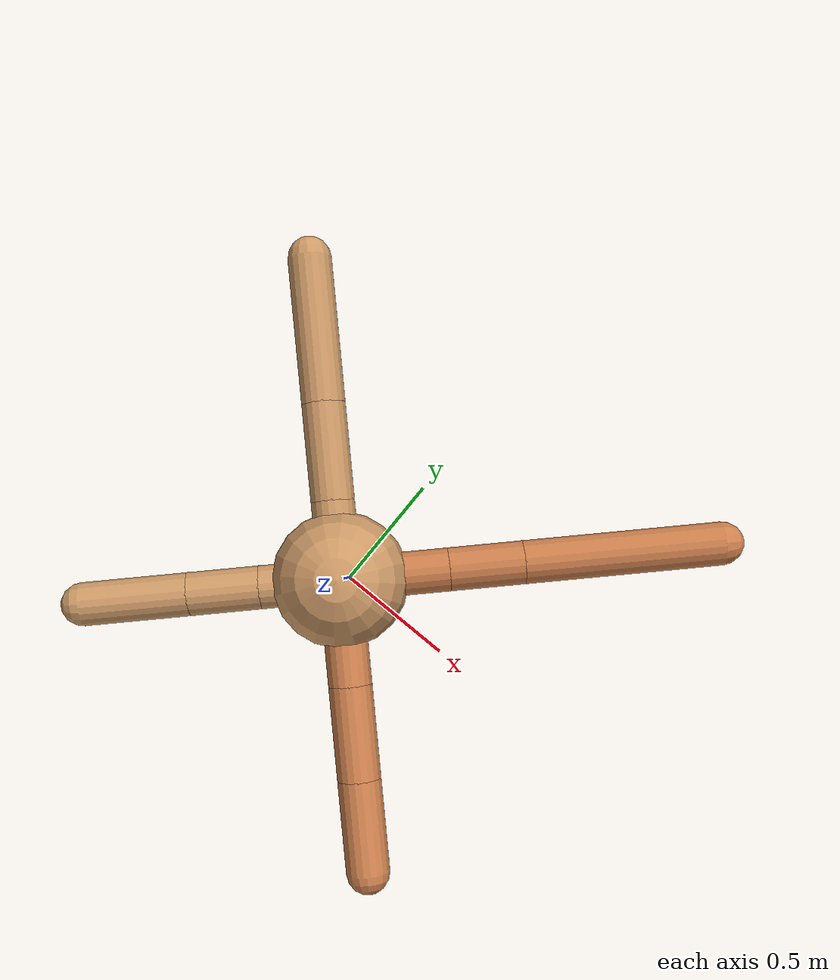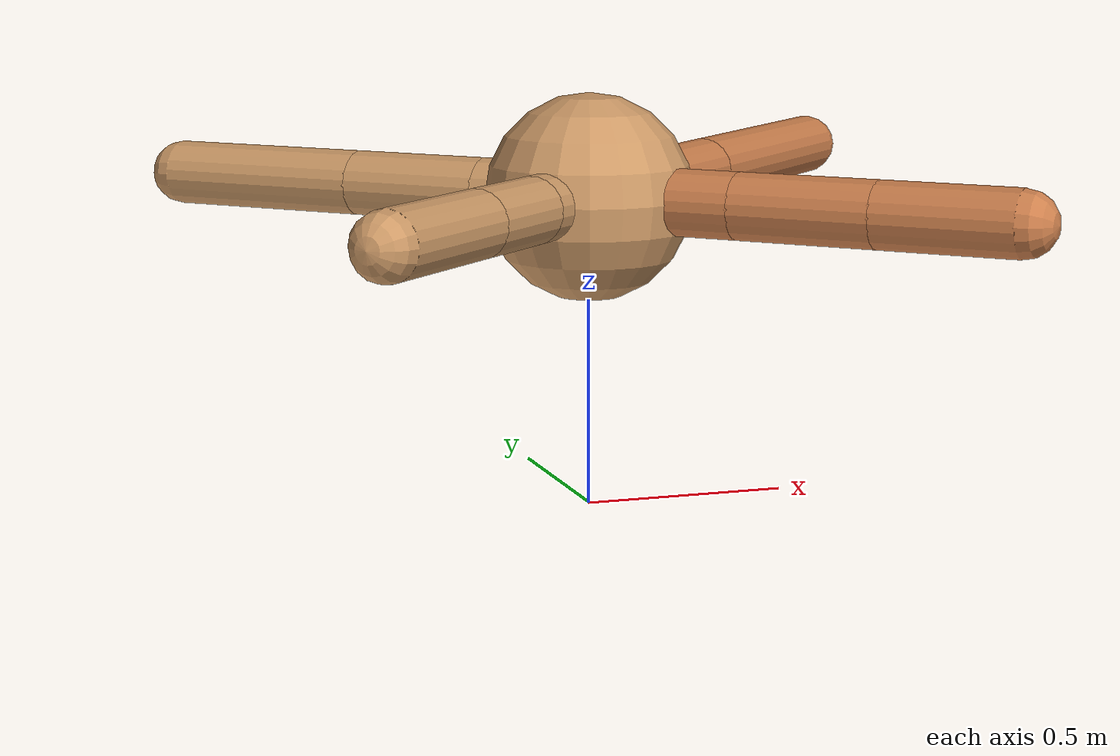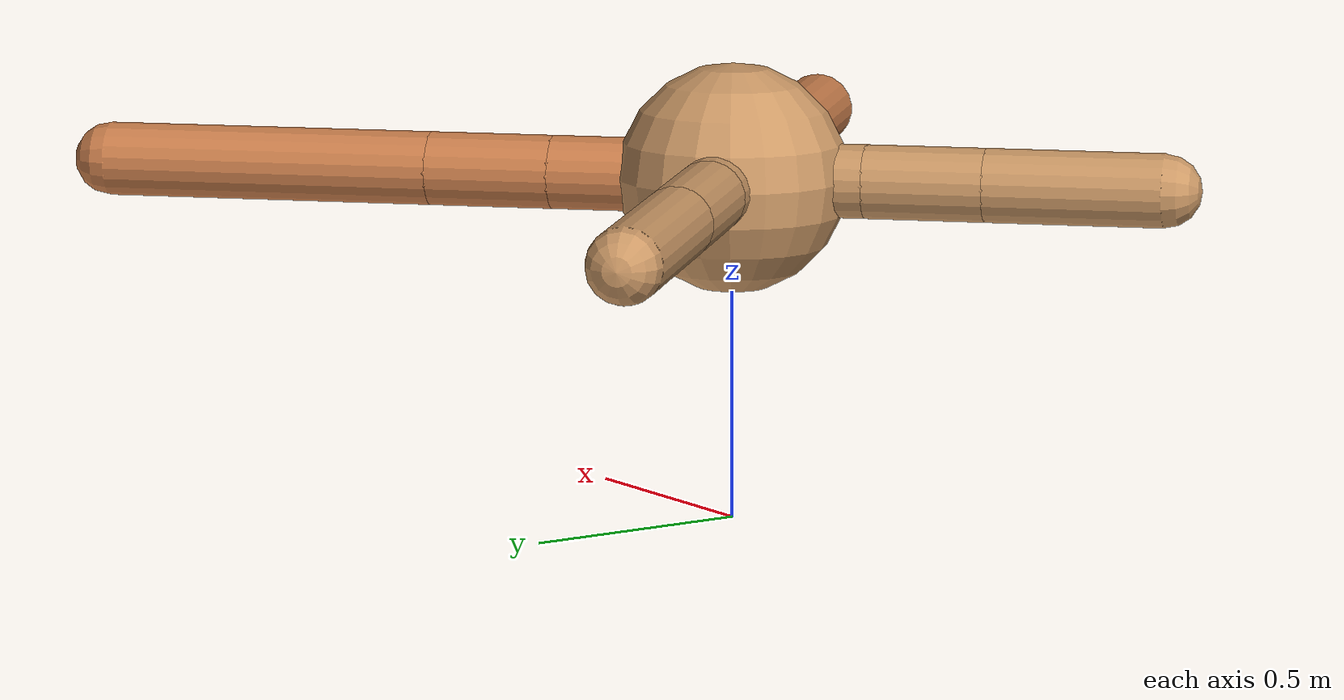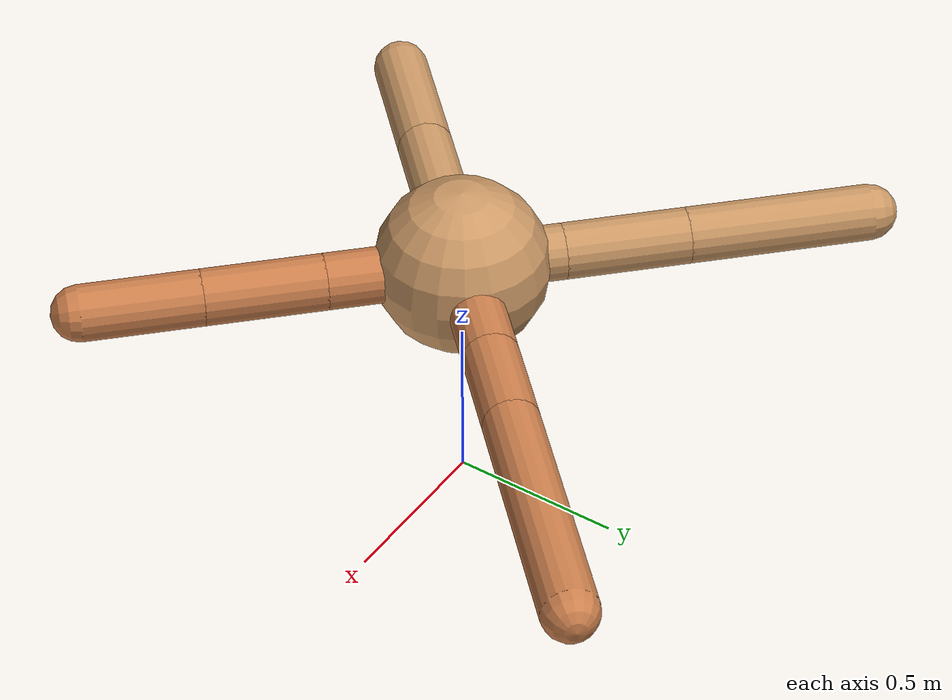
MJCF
<mujoco model="ant">
  <compiler angle="degree" coordinate="local" inertiafromgeom="true" />
  <option integrator="RK4" timestep="0.01" />
  <custom>
    <numeric data="0.0 0.0 0.55 1.0 0.0 0.0 0.0 0.0 1.0 0.0 -1.0 0.0 -1.0 0.0 1.0" name="init_qpos" />
  </custom>
  <default>
    <joint armature="1" damping="1" limited="true" />
    <geom conaffinity="0" condim="3" density="5.0" friction="1.5 0.1 0.1" margin="0.01" rgba="0.8 0.6 0.4 1" />
  </default>
  <worldbody>
    <body name="torso" pos="0 0 0.75">
      <geom name="torso_geom" pos="0 0 0" size="0.25" type="sphere" />

      <body name="front_left_leg" pos="0 0 0">
        <geom fromto="0.0 0.0 0.0 0.2808028537852076 0.2808028537852076 0.0" name="aux_1_geom" size="0.08" type="capsule" rgba=".8 .5 .3 1" />
        <body name="aux_1" pos="0.2808028537852076 0.2808028537852076 0.0">
          <joint axis="0 0 1" name="hip_1" pos="0.0 0.0 0.0" range="-40 40" type="hinge" />
          <geom fromto="0.0 0.0 0.0 0.1919852457390312 0.1919852457390312 0.0" name="left_leg_geom" size="0.08" type="capsule" rgba=".8 .5 .3 1" />
          <body pos="0.1919852457390312 0.1919852457390312 0.0" name="front_left_foot">
            <joint axis="-1 1 0" name="ankle_1" pos="0.0 0.0 0.0" range="30 100" type="hinge" />
            <geom fromto="0.0 0.0 0.0 0.5107272178447849 0.5107272178447849 0.0" name="left_ankle_geom" size="0.08" type="capsule" rgba=".8 .5 .3 1" />
          </body>
        </body>
      </body>
      <body name="front_right_leg" pos="0 0 0">
        <geom fromto="0.0 0.0 0.0 -0.20233296182784777 0.20233296182784777 0.0" name="aux_2_geom" size="0.08" type="capsule" />
        <body name="aux_2" pos="-0.20233296182784777 0.20233296182784777 0.0">
          <joint axis="0 0 1" name="hip_2" pos="0.0 0.0 0.0" range="-40 40" type="hinge" />
          <geom fromto="0.0 0.0 0.0 -0.25156488108127306 0.25156488108127306 0.0" name="right_leg_geom" size="0.08" type="capsule" />
          <body pos="-0.25156488108127306 0.25156488108127306 0.0" name="front_right_foot">
            <joint axis="1 1 0" name="ankle_2" pos="0.0 0.0 0.0" range="-100 -30" type="hinge" />
            <geom fromto="0.0 0.0 0.0 -0.3755914737527381 0.3755914737527381 0.0" name="right_ankle_geom" size="0.08" type="capsule" />
          </body>
        </body>
      </body>
      <body name="left_back_leg" pos="0 0 0">
        <geom fromto="0.0 0.0 0.0 -0.2048694680682396 -0.2048694680682396 0.0" name="aux_3_geom" size="0.08" type="capsule" />
        <body name="aux_3" pos="-0.2048694680682396 -0.2048694680682396 0.0">
          <joint axis="0 0 1" name="hip_3" pos="0.0 0.0 0.0" range="-40 40" type="hinge" />
          <geom fromto="0.0 0.0 0.0 -0.18405379527540805 -0.18405379527540805 0.0" name="back_leg_geom" size="0.08" type="capsule" />
          <body pos="-0.18405379527540805 -0.18405379527540805 0.0" name="left_back_foot">
            <joint axis="-1 1 0" name="ankle_3" pos="0.0 0.0 0.0" range="-100 -30" type="hinge" />
            <geom fromto="0.0 0.0 0.0 -0.2731742408583801 -0.2731742408583801 0.0" name="third_ankle_geom" size="0.08" type="capsule" />
          </body>
        </body>
      </body>
      <body name="right_back_leg" pos="0 0 0">
        <geom fromto="0.0 0.0 0.0 0.27291656375411794 -0.27291656375411794 0.0" name="aux_4_geom" size="0.08" type="capsule" rgba=".8 .5 .3 1" />
        <body name="aux_4" pos="0.27291656375411794 -0.27291656375411794 0.0">
          <joint axis="0 0 1" name="hip_4" pos="0.0 0.0 0.0" range="-40 40" type="hinge" />
          <geom fromto="0.0 0.0 0.0 0.24276625741083652 -0.24276625741083652 0.0" name="rightback_leg_geom" size="0.08" type="capsule" rgba=".8 .5 .3 1" />
          <body pos="0.24276625741083652 -0.24276625741083652 0.0" name="right_back_foot">
            <joint axis="1 1 0" name="ankle_4" pos="0.0 0.0 0.0" range="30 100" type="hinge" />
            <geom fromto="0.0 0.0 0.0 0.2402274836920588 -0.2402274836920588 0.0" name="fourth_ankle_geom" size="0.08" type="capsule" rgba=".8 .5 .3 1" />
          </body>
        </body>
      </body>
    </body>
  </worldbody>
  <actuator>
    <motor ctrllimited="true" ctrlrange="-1.0 1.0" joint="hip_4" gear="150" />
    <motor ctrllimited="true" ctrlrange="-1.0 1.0" joint="ankle_4" gear="150" />
    <motor ctrllimited="true" ctrlrange="-1.0 1.0" joint="hip_1" gear="150" />
    <motor ctrllimited="true" ctrlrange="-1.0 1.0" joint="ankle_1" gear="150" />
    <motor ctrllimited="true" ctrlrange="-1.0 1.0" joint="hip_2" gear="150" />
    <motor ctrllimited="true" ctrlrange="-1.0 1.0" joint="ankle_2" gear="150" />
    <motor ctrllimited="true" ctrlrange="-1.0 1.0" joint="hip_3" gear="150" />
    <motor ctrllimited="true" ctrlrange="-1.0 1.0" joint="ankle_3" gear="150" />
  </actuator>
</mujoco>
